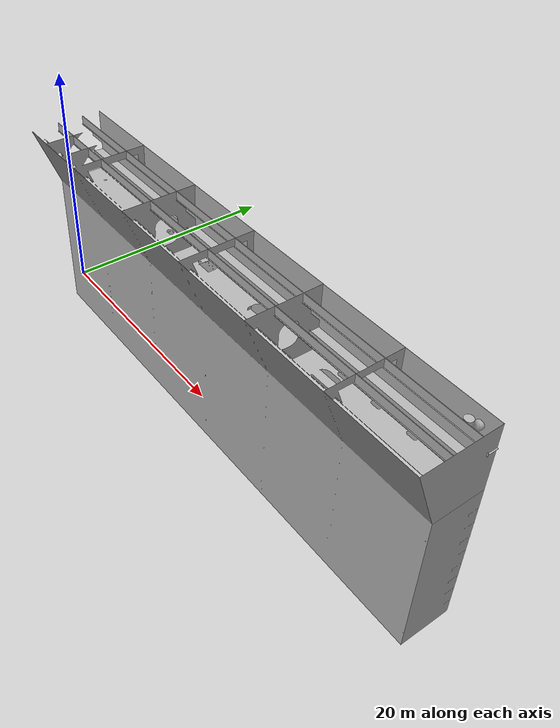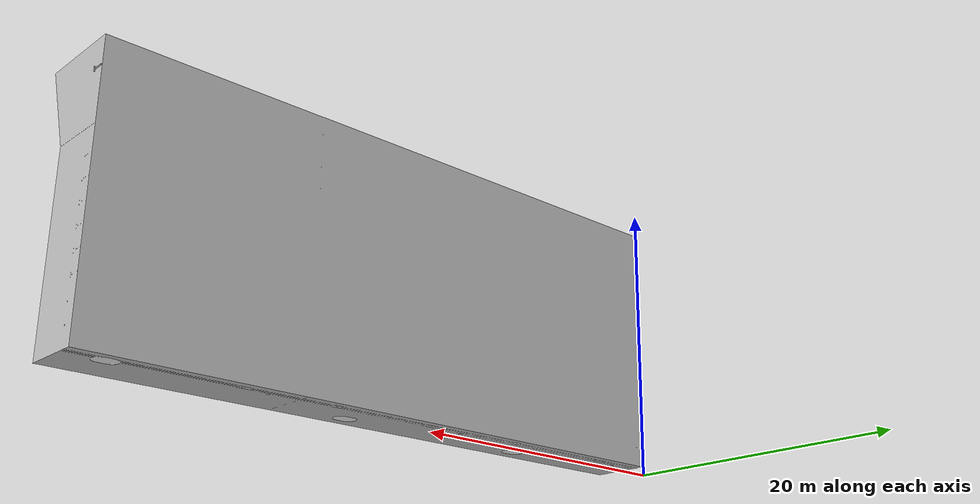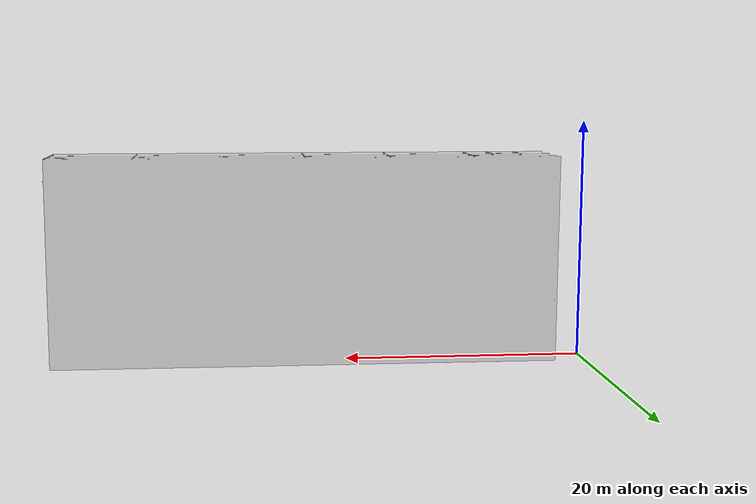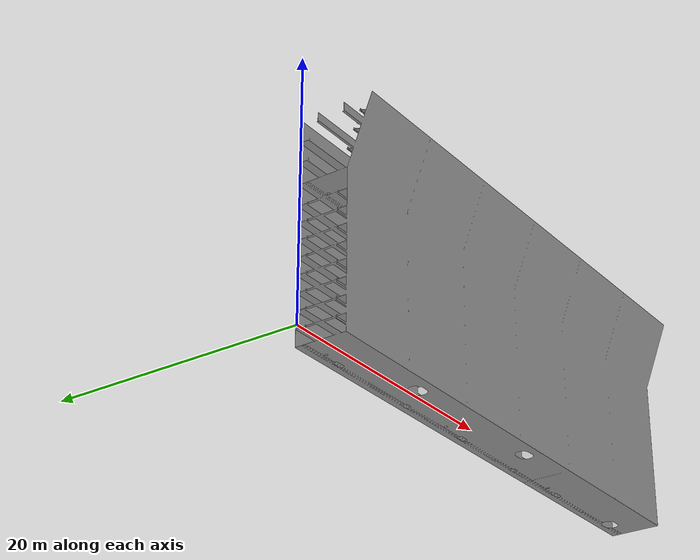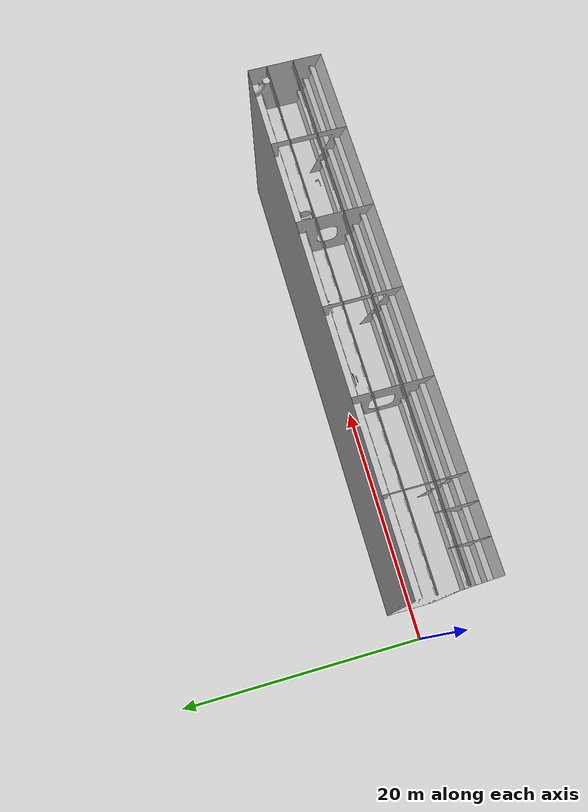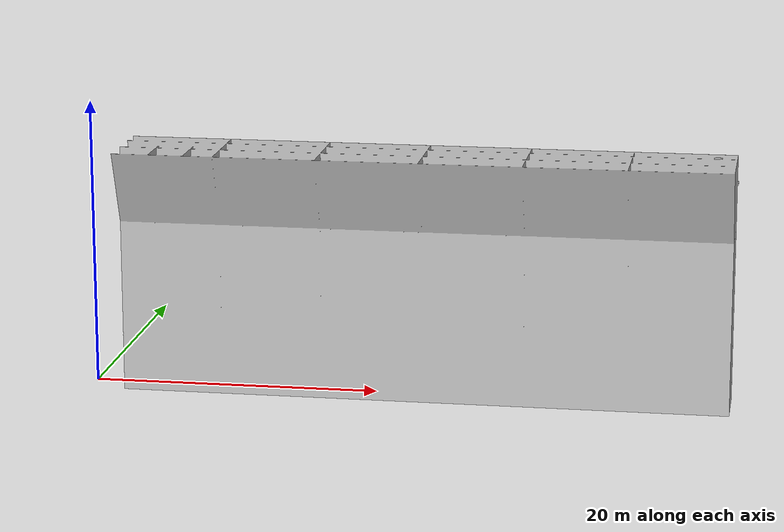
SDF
<?xml version="1.0"?>
<sdf version="1.5">
  <model name="ballast_tank">
      <pose>0.0 0.0 0.0  1.5707 0.0 0.0</pose>
      <static>true</static>

      <link name="ballast_tank_link"/>

      <link name="ballast_tank_no_pipes_link">
        <collision name="collision">
          <geometry>
            <mesh>
              <uri>model://ballast_tank/meshes/ballast_tank_no_pipes_2x.dae</uri>
              <scale>1 1 1</scale>
            </mesh>
          </geometry>
          <max_contacts>10</max_contacts>
          <surface>
            <contact>
              <ode/>
            </contact>
            <bounce/>
            <friction>
              <torsional>
                <ode/>
              </torsional>
              <ode/>
            </friction>
          </surface>
        </collision>
        <visual name="visual">
          <geometry>
            <mesh>
              <uri>model://ballast_tank/meshes/ballast_tank_no_pipes_2x.dae</uri>
              <scale>1 1 1</scale>
            </mesh>
          </geometry>
          <material>
            <script>
              <uri>model://ballast_tank/materials/scripts/repeated.material</uri>
              <name>FullMaterial</name>
            </script>
          </material>
        </visual>
        <self_collide>0</self_collide>
        <enable_wind>0</enable_wind>
        <kinematic>0</kinematic>
      </link>
      <joint type="fixed" name="ballast_tank_no_pipes_joint">
        <pose frame=''>0.0 0.0 0.0  0.0 0.0 0.0</pose>
        <parent>ballast_tank_link</parent>
        <child>ballast_tank_no_pipes_link</child>
        <axis>
          <xyz>0 0 1</xyz>
        </axis>
      </joint>
    </model>
</sdf>
